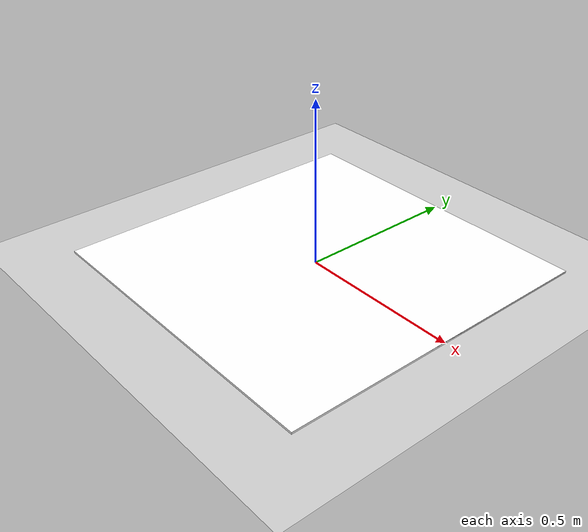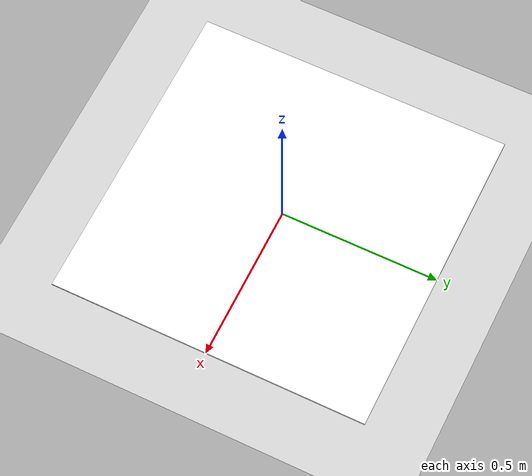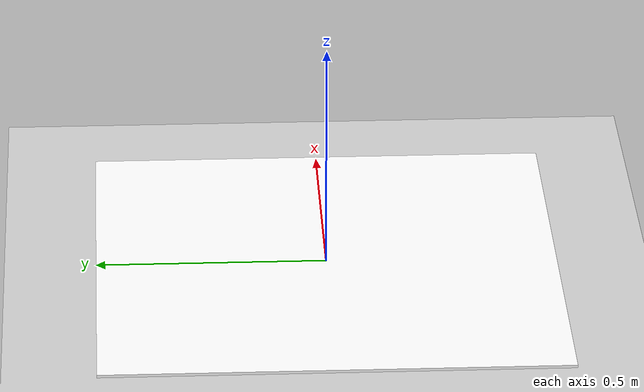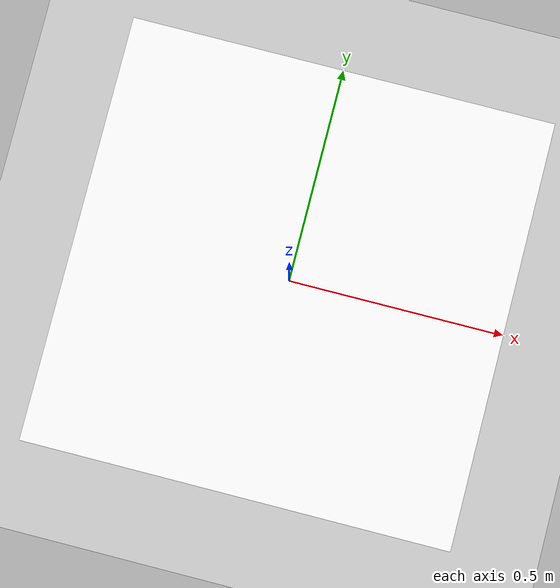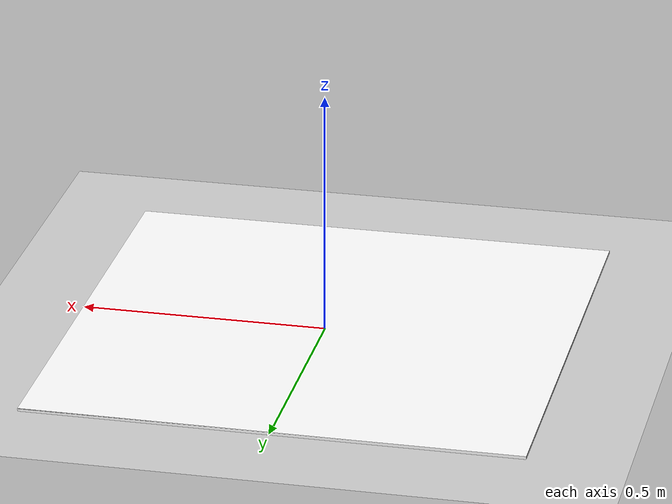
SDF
<sdf version="1.5">
 <world name="default">
  <include><uri>model://sun</uri></include>
  <include><uri>model://ground_plane</uri></include>
  <include><uri>model://landing_pad</uri></include>
  <spherical_coordinates><latitude_deg>0</latitude_deg><longitude_deg>0</longitude_deg></spherical_coordinates>
  <physics name="default_physics" default="0" type="ode">
   <gravity>0 0 -9.8066</gravity>
   <ode>
    <solver>
     <type>quick</type>
     <iters>10</iters>
     <sor>1.3</sor>
     <use_dynamic_moi_rescaling>0</use_dynamic_moi_rescaling>
    </solver>
    <constraints>
     <cfm>0</cfm>
     <erp>0.2</erp>
     <contact_max_correcting_vel>100</contact_max_correcting_vel>
     <contact_surface_layer>0.001</contact_surface_layer>
    </constraints>
   </ode>
   <max_step_size>0.004</max_step_size>
   <real_time_factor>1</real_time_factor>
   <real_time_update_rate>250</real_time_update_rate>
   <magnetic_field>6.0e-6 2.3e-5 -4.2e-5</magnetic_field>
  </physics>
 </world>
</sdf>

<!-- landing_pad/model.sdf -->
<sdf version='1.5'>
  <model name='landing_pad'>

    <link name='marker'>
      <pose frame=''>0 0 0 0 0 0</pose>
      <visual name='visual'>
        <geometry>
          <box>
            <size>1.0 1.0 0.01</size>
          </box>
        </geometry>
        <material>
          <script>
            <uri>model://landing_pad/materials/scripts</uri>
            <uri>model://landing_pad/materials/textures</uri>
            <name>landing_pad/pad</name>
          </script>
          <ambient>1 1 1 1</ambient>
          <diffuse>1 1 1 1</diffuse>
          <specular>0 0 0 1</specular>
          <emissive>1 1 1 0</emissive>
          <shader type='vertex'>
            <normal_map>__default__</normal_map>
          </shader>
        </material>
        <pose frame=''>0 0 0 0 -0 0</pose>
        <cast_shadows>1</cast_shadows>
        <transparency>0</transparency>
      </visual>
      <collision name='collision'>
        <laser_retro>0</laser_retro>
        <max_contacts>10</max_contacts>
        <pose frame=''>0 0 0 0 -0 0</pose>
        <geometry>
          <box>
            <size>1.0 1.0 0.01</size>
          </box>
        </geometry>
      </collision>

    </link>

    <link name='marker_pad'>
      <pose frame='marker'>0 0 0 0 -0 0</pose>
      <visual name='visual'>
        <geometry>
          <box>
            <size>1.0 1.0 0.009</size>
          </box>
        </geometry>
        <material>
          <lighting>1</lighting>
          <script>
            <uri>file://media/materials/scripts/gazebo.material</uri>
            <name>Gazebo/White</name>
          </script>
          <ambient>0.3 0.3 0.3 1</ambient>
          <diffuse>0.7 0.7 0.7 1</diffuse>
          <specular>0.01 0.01 0.01 1</specular>
          <emissive>1 1 1 0</emissive>
          <shader type='vertex'>
            <normal_map>__default__</normal_map>
          </shader>
        </material>
        <cast_shadows>1</cast_shadows>
        <transparency>0</transparency>
      </visual>
      <collision name='collision'>
        <laser_retro>0</laser_retro>
        <max_contacts>10</max_contacts>
        <pose frame=''>0 0 0 0 -0 0</pose>
        <geometry>
          <box>
            <size>1.0 1.0 0.009</size>
          </box>
        </geometry>
      </collision>
    </link>

    <joint name='marker_JOINT_marker_pad' type='revolute'>
      <parent>marker</parent>
      <child>marker_pad</child>
      <pose frame=''>0 0 0 0 -0 0</pose>
      <axis>
        <xyz>0 0 1</xyz>
        <limit>
          <upper>0</upper>
          <lower>0</lower>
        </limit>
      </axis>
    </joint>

    <plugin name='model_push_plugin' filename='libgazebo_model_push_plugin.so'>
      <robotNamespace/>
    </plugin>

  </model>
</sdf>
